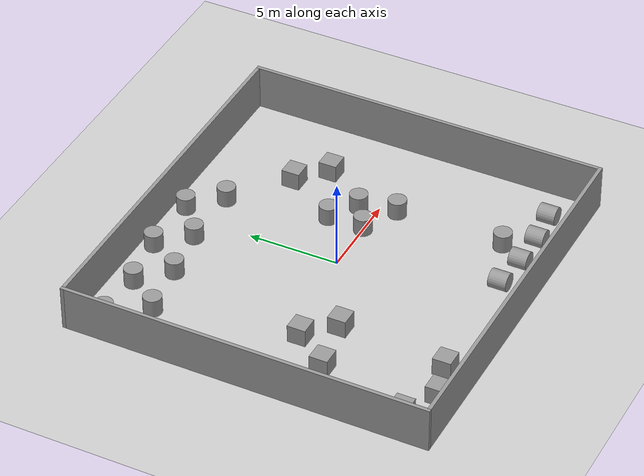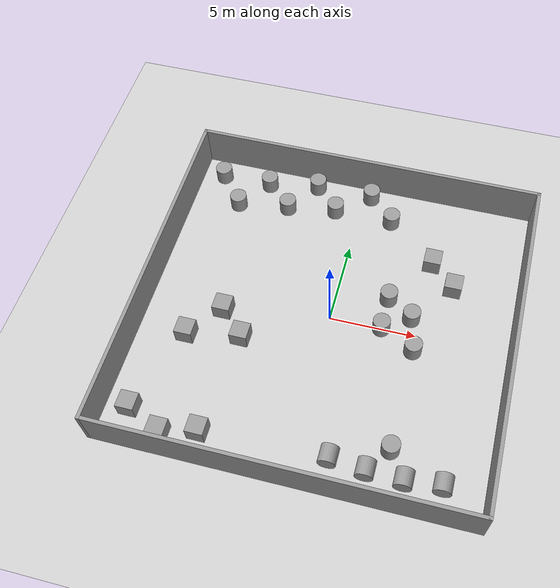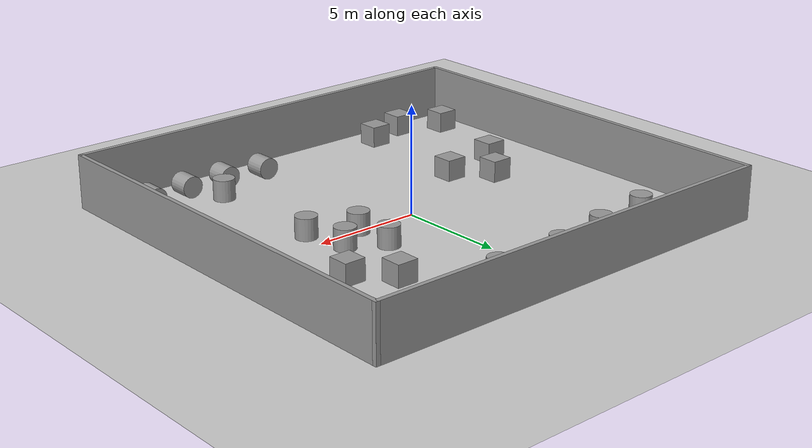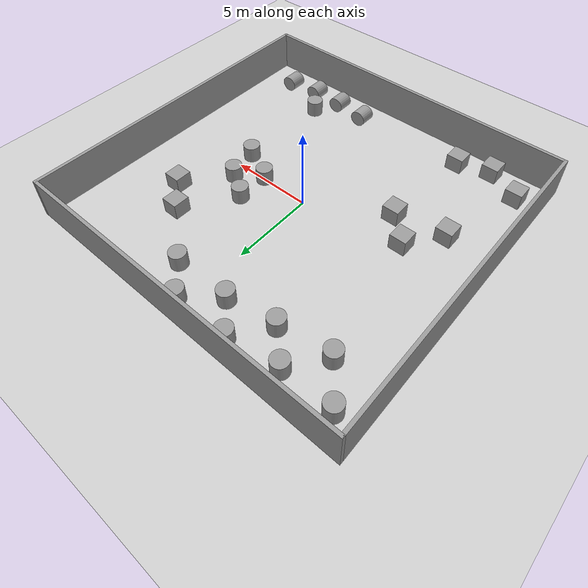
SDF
<sdf version="1.4">
 <world name="default">
  <model name="ground_plane">
   <static>1</static>
   <link name="link">
    <collision name="collision">
     <geometry><plane><normal>0 0 1</normal><size>100 100</size></plane></geometry>
     <surface><friction><ode><mu>100</mu><mu2>50</mu2></ode></friction></surface>
    </collision>
    <visual name="visual">
     <cast_shadows>0</cast_shadows>
     <geometry><plane><normal>0 0 1</normal><size>100 100</size></plane></geometry>
     <material>
      <script><uri>file://media/materials/scripts/gazebo.material</uri><name>Gazebo/Grey</name></script>
     </material>
    </visual>
    <velocity_decay><linear>0</linear><angular>0</angular></velocity_decay>
   </link>
  </model>
  <light name="sun" type="directional">
   <pose>0 0 10 0 -0 0</pose>
   <diffuse>0.8 0.8 0.8 1</diffuse>
   <specular>0.2 0.2 0.2 1</specular>
   <attenuation>
    <range>1000</range>
    <constant>0.9</constant>
    <linear>0.01</linear>
    <quadratic>0.001</quadratic>
   </attenuation>
   <direction>-0.5 0.1 -0.9</direction>
  </light>
  <model name="BuildingDefaultName3">
   <link name="Wall_12">
    <collision name="Wall_12_Collision">
     <geometry><box><size>20.7566 0.2 2.5</size></box></geometry>
     <pose>0 0 1.25 0 -0 0</pose>
    </collision>
    <visual name="Wall_12_Visual">
     <pose>0 0 1.25 0 -0 0</pose>
     <geometry><box><size>20.7566 0.2 2.5</size></box></geometry>
     <material>
      <script><uri>file://media/materials/scripts/gazebo.material</uri><name>Gazebo/Grey</name></script>
     </material>
    </visual>
    <velocity_decay><linear>0</linear><angular>0</angular></velocity_decay>
    <pose>0.012585 -10.0653 0 0 -0 0</pose>
   </link>
   <link name="Wall_13">
    <collision name="Wall_13_Collision">
     <geometry><box><size>20.1448 0.2 2.5</size></box></geometry>
     <pose>0 0 1.25 0 -0 0</pose>
    </collision>
    <visual name="Wall_13_Visual">
     <pose>0 0 1.25 0 -0 0</pose>
     <geometry><box><size>20.1448 0.2 2.5</size></box></geometry>
     <material>
      <script><uri>file://media/materials/scripts/gazebo.material</uri><name>Gazebo/Grey</name></script>
     </material>
    </visual>
    <velocity_decay><linear>0</linear><angular>0</angular></velocity_decay>
    <pose>10.2909 -0.092882 0 0 -0 1.5708</pose>
   </link>
   <link name="Wall_14">
    <collision name="Wall_14_Collision">
     <geometry><box><size>20.9402 0.2 2.5</size></box></geometry>
     <pose>0 0 1.25 0 -0 0</pose>
    </collision>
    <visual name="Wall_14_Visual">
     <pose>0 0 1.25 0 -0 0</pose>
     <geometry><box><size>20.9402 0.2 2.5</size></box></geometry>
     <material>
      <script><uri>file://media/materials/scripts/gazebo.material</uri><name>Gazebo/Grey</name></script>
     </material>
    </visual>
    <velocity_decay><linear>0</linear><angular>0</angular></velocity_decay>
    <pose>-0.079185 9.87953 0 0 -0 3.14159</pose>
   </link>
   <link name="Wall_15">
    <collision name="Wall_15_Collision">
     <geometry><box><size>20.1448 0.2 2.5</size></box></geometry>
     <pose>0 0 1.25 0 -0 0</pose>
    </collision>
    <visual name="Wall_15_Visual">
     <pose>0 0 1.25 0 -0 0</pose>
     <geometry><box><size>20.1448 0.2 2.5</size></box></geometry>
     <material>
      <script><uri>file://media/materials/scripts/gazebo.material</uri><name>Gazebo/Grey</name></script>
     </material>
    </visual>
    <velocity_decay><linear>0</linear><angular>0</angular></velocity_decay>
    <pose>-10.4493 -0.092882 0 0 0 -1.5708</pose>
   </link>
   <static>1</static>
  </model>
  <physics type="ode">
   <max_step_size>0.001</max_step_size>
   <real_time_factor>1</real_time_factor>
   <real_time_update_rate>1000</real_time_update_rate>
   <gravity>0 0 -9.8</gravity>
  </physics>
  <scene><ambient>0.4 0.4 0.4 1</ambient><background>0.7 0.7 0.7 1</background><shadows>1</shadows></scene>
  <spherical_coordinates>
   <surface_model>EARTH_WGS84</surface_model>
   <latitude_deg>0</latitude_deg>
   <longitude_deg>0</longitude_deg>
   <elevation>0</elevation>
   <heading_deg>0</heading_deg>
  </spherical_coordinates>
  <model name="unit_cylinder_1">
   <pose>-9 8.47512 0.499992 0 -0 0</pose>
   <link name="link">
    <inertial>
     <mass>1</mass>
     <inertia><ixx>1</ixx><ixy>0</ixy><ixz>0</ixz><iyy>1</iyy><iyz>0</iyz><izz>1</izz></inertia>
    </inertial>
    <collision name="collision">
     <geometry><cylinder><radius>0.5</radius><length>1</length></cylinder></geometry>
    </collision>
    <visual name="visual">
     <geometry><cylinder><radius>0.5</radius><length>1</length></cylinder></geometry>
     <material>
      <script><uri>file://media/materials/scripts/gazebo.material</uri><name>Gazebo/Grey</name></script>
     </material>
    </visual>
    <velocity_decay><linear>0</linear><angular>0</angular></velocity_decay>
   </link>
   <static>0</static>
  </model>
  <model name="unit_cylinder_2">
   <pose>-6 8.49074 0.499998 -0 -0 -0</pose>
   <link name="link">
    <inertial>
     <mass>1</mass>
     <inertia><ixx>1</ixx><ixy>0</ixy><ixz>0</ixz><iyy>1</iyy><iyz>0</iyz><izz>1</izz></inertia>
    </inertial>
    <collision name="collision">
     <geometry><cylinder><radius>0.5</radius><length>1</length></cylinder></geometry>
    </collision>
    <visual name="visual">
     <geometry><cylinder><radius>0.5</radius><length>1</length></cylinder></geometry>
     <material>
      <script><uri>file://media/materials/scripts/gazebo.material</uri><name>Gazebo/Grey</name></script>
     </material>
    </visual>
    <velocity_decay><linear>0</linear><angular>0</angular></velocity_decay>
   </link>
   <static>0</static>
  </model>
  <model name="unit_cylinder_3">
   <pose>-7.46054 6.56411 0.499992 0 -0 0</pose>
   <link name="link">
    <inertial>
     <mass>1</mass>
     <inertia><ixx>1</ixx><ixy>0</ixy><ixz>0</ixz><iyy>1</iyy><iyz>0</iyz><izz>1</izz></inertia>
    </inertial>
    <collision name="collision">
     <geometry><cylinder><radius>0.5</radius><length>1</length></cylinder></geometry>
    </collision>
    <visual name="visual">
     <geometry><cylinder><radius>0.5</radius><length>1</length></cylinder></geometry>
     <material>
      <script><uri>file://media/materials/scripts/gazebo.material</uri><name>Gazebo/Grey</name></script>
     </material>
    </visual>
    <velocity_decay><linear>0</linear><angular>0</angular></velocity_decay>
   </link>
   <static>0</static>
  </model>
  <model name="unit_cylinder_4">
   <pose>-4.42348 7 0.499992 -1e-06 1e-06 0</pose>
   <link name="link">
    <inertial>
     <mass>1</mass>
     <inertia><ixx>1</ixx><ixy>0</ixy><ixz>0</ixz><iyy>1</iyy><iyz>0</iyz><izz>1</izz></inertia>
    </inertial>
    <collision name="collision">
     <geometry><cylinder><radius>0.5</radius><length>1</length></cylinder></geometry>
    </collision>
    <visual name="visual">
     <geometry><cylinder><radius>0.5</radius><length>1</length></cylinder></geometry>
     <material>
      <script><uri>file://media/materials/scripts/gazebo.material</uri><name>Gazebo/Grey</name></script>
     </material>
    </visual>
    <velocity_decay><linear>0</linear><angular>0</angular></velocity_decay>
   </link>
   <static>0</static>
  </model>
  <model name="unit_cylinder_5">
   <pose>-3 9 0.499998 1e-06 -1e-06 0</pose>
   <link name="link">
    <inertial>
     <mass>1</mass>
     <inertia><ixx>1</ixx><ixy>0</ixy><ixz>0</ixz><iyy>1</iyy><iyz>0</iyz><izz>1</izz></inertia>
    </inertial>
    <collision name="collision">
     <geometry><cylinder><radius>0.5</radius><length>1</length></cylinder></geometry>
    </collision>
    <visual name="visual">
     <geometry><cylinder><radius>0.5</radius><length>1</length></cylinder></geometry>
     <material>
      <script><uri>file://media/materials/scripts/gazebo.material</uri><name>Gazebo/Grey</name></script>
     </material>
    </visual>
    <velocity_decay><linear>0</linear><angular>0</angular></velocity_decay>
   </link>
   <static>0</static>
  </model>
  <model name="unit_cylinder_6">
   <pose>-1.50811 7.45695 0.499992 -1e-06 1e-06 0</pose>
   <link name="link">
    <inertial>
     <mass>1</mass>
     <inertia><ixx>1</ixx><ixy>0</ixy><ixz>0</ixz><iyy>1</iyy><iyz>0</iyz><izz>1</izz></inertia>
    </inertial>
    <collision name="collision">
     <geometry><cylinder><radius>0.5</radius><length>1</length></cylinder></geometry>
    </collision>
    <visual name="visual">
     <geometry><cylinder><radius>0.5</radius><length>1</length></cylinder></geometry>
     <material>
      <script><uri>file://media/materials/scripts/gazebo.material</uri><name>Gazebo/Grey</name></script>
     </material>
    </visual>
    <velocity_decay><linear>0</linear><angular>0</angular></velocity_decay>
   </link>
   <static>0</static>
  </model>
  <model name="unit_cylinder_7">
   <pose>0.422255 9 0.499998 1e-06 -1e-06 0</pose>
   <link name="link">
    <inertial>
     <mass>1</mass>
     <inertia><ixx>1</ixx><ixy>0</ixy><ixz>0</ixz><iyy>1</iyy><iyz>0</iyz><izz>1</izz></inertia>
    </inertial>
    <collision name="collision">
     <geometry><cylinder><radius>0.5</radius><length>1</length></cylinder></geometry>
    </collision>
    <visual name="visual">
     <geometry><cylinder><radius>0.5</radius><length>1</length></cylinder></geometry>
     <material>
      <script><uri>file://media/materials/scripts/gazebo.material</uri><name>Gazebo/Grey</name></script>
     </material>
    </visual>
    <velocity_decay><linear>0</linear><angular>0</angular></velocity_decay>
   </link>
   <static>0</static>
  </model>
  <model name="unit_cylinder_8">
   <pose>2 7.45092 0.499992 -1e-06 1e-06 0</pose>
   <link name="link">
    <inertial>
     <mass>1</mass>
     <inertia><ixx>1</ixx><ixy>0</ixy><ixz>0</ixz><iyy>1</iyy><iyz>0</iyz><izz>1</izz></inertia>
    </inertial>
    <collision name="collision">
     <geometry><cylinder><radius>0.5</radius><length>1</length></cylinder></geometry>
    </collision>
    <visual name="visual">
     <geometry><cylinder><radius>0.5</radius><length>1</length></cylinder></geometry>
     <material>
      <script><uri>file://media/materials/scripts/gazebo.material</uri><name>Gazebo/Grey</name></script>
     </material>
    </visual>
    <velocity_decay><linear>0</linear><angular>0</angular></velocity_decay>
   </link>
   <static>0</static>
  </model>
  <model name="unit_cylinder_9">
   <pose>7.986 -8.26786 0.5 -1.5708 0 0</pose>
   <link name="link">
    <inertial>
     <mass>1</mass>
     <inertia><ixx>1</ixx><ixy>0</ixy><ixz>0</ixz><iyy>1</iyy><iyz>0</iyz><izz>1</izz></inertia>
    </inertial>
    <collision name="collision">
     <geometry><cylinder><radius>0.5</radius><length>1</length></cylinder></geometry>
    </collision>
    <visual name="visual">
     <geometry><cylinder><radius>0.5</radius><length>1</length></cylinder></geometry>
     <material>
      <script><uri>file://media/materials/scripts/gazebo.material</uri><name>Gazebo/Grey</name></script>
     </material>
    </visual>
    <velocity_decay><linear>0</linear><angular>0</angular></velocity_decay>
   </link>
   <static>0</static>
  </model>
  <model name="unit_cylinder_10">
   <pose>5.99948 -8.47849 0.5 -1.5708 -0.000971 0.000224</pose>
   <link name="link">
    <inertial>
     <mass>1</mass>
     <inertia><ixx>1</ixx><ixy>0</ixy><ixz>0</ixz><iyy>1</iyy><iyz>0</iyz><izz>1</izz></inertia>
    </inertial>
    <collision name="collision">
     <geometry><cylinder><radius>0.5</radius><length>1</length></cylinder></geometry>
    </collision>
    <visual name="visual">
     <geometry><cylinder><radius>0.5</radius><length>1</length></cylinder></geometry>
     <material>
      <script><uri>file://media/materials/scripts/gazebo.material</uri><name>Gazebo/Grey</name></script>
     </material>
    </visual>
    <velocity_decay><linear>0</linear><angular>0</angular></velocity_decay>
   </link>
   <static>0</static>
  </model>
  <model name="unit_cylinder_11">
   <pose>4 -8.43207 0.5 -1.5708 0 0</pose>
   <link name="link">
    <inertial>
     <mass>1</mass>
     <inertia><ixx>1</ixx><ixy>0</ixy><ixz>0</ixz><iyy>1</iyy><iyz>0</iyz><izz>1</izz></inertia>
    </inertial>
    <collision name="collision">
     <geometry><cylinder><radius>0.5</radius><length>1</length></cylinder></geometry>
    </collision>
    <visual name="visual">
     <geometry><cylinder><radius>0.5</radius><length>1</length></cylinder></geometry>
     <material>
      <script><uri>file://media/materials/scripts/gazebo.material</uri><name>Gazebo/Grey</name></script>
     </material>
    </visual>
    <velocity_decay><linear>0</linear><angular>0</angular></velocity_decay>
   </link>
   <static>0</static>
  </model>
  <model name="unit_cylinder_12">
   <pose>2 -8.21356 0.5 -1.5708 0 0</pose>
   <link name="link">
    <inertial>
     <mass>1</mass>
     <inertia><ixx>1</ixx><ixy>0</ixy><ixz>0</ixz><iyy>1</iyy><iyz>0</iyz><izz>1</izz></inertia>
    </inertial>
    <collision name="collision">
     <geometry><cylinder><radius>0.5</radius><length>1</length></cylinder></geometry>
    </collision>
    <visual name="visual">
     <geometry><cylinder><radius>0.5</radius><length>1</length></cylinder></geometry>
     <material>
      <script><uri>file://media/materials/scripts/gazebo.material</uri><name>Gazebo/Grey</name></script>
     </material>
    </visual>
    <velocity_decay><linear>0</linear><angular>0</angular></velocity_decay>
   </link>
   <static>0</static>
  </model>
  <model name="unit_cylinder_13">
   <pose>5 -7 0.499992 -1e-06 1e-06 0</pose>
   <link name="link">
    <inertial>
     <mass>1</mass>
     <inertia><ixx>1</ixx><ixy>0</ixy><ixz>0</ixz><iyy>1</iyy><iyz>0</iyz><izz>1</izz></inertia>
    </inertial>
    <collision name="collision">
     <geometry><cylinder><radius>0.5</radius><length>1</length></cylinder></geometry>
    </collision>
    <visual name="visual">
     <geometry><cylinder><radius>0.5</radius><length>1</length></cylinder></geometry>
     <material>
      <script><uri>file://media/materials/scripts/gazebo.material</uri><name>Gazebo/Grey</name></script>
     </material>
    </visual>
    <velocity_decay><linear>0</linear><angular>0</angular></velocity_decay>
   </link>
   <static>0</static>
  </model>
  <model name="unit_box_1">
   <pose>-7 -9 0.5 0 -0 0</pose>
   <link name="link">
    <inertial>
     <mass>1</mass>
     <inertia><ixx>1</ixx><ixy>0</ixy><ixz>0</ixz><iyy>1</iyy><iyz>0</iyz><izz>1</izz></inertia>
    </inertial>
    <collision name="collision"><geometry><box><size>1 1 1</size></box></geometry></collision>
    <visual name="visual">
     <geometry><box><size>1 1 1</size></box></geometry>
     <material>
      <script><uri>file://media/materials/scripts/gazebo.material</uri><name>Gazebo/Grey</name></script>
     </material>
    </visual>
    <velocity_decay><linear>0</linear><angular>0</angular></velocity_decay>
   </link>
   <static>0</static>
  </model>
  <model name="unit_box_2">
   <pose>-9 -8 0.5 0 -0 0</pose>
   <link name="link">
    <inertial>
     <mass>1</mass>
     <inertia><ixx>1</ixx><ixy>0</ixy><ixz>0</ixz><iyy>1</iyy><iyz>0</iyz><izz>1</izz></inertia>
    </inertial>
    <collision name="collision"><geometry><box><size>1 1 1</size></box></geometry></collision>
    <visual name="visual">
     <geometry><box><size>1 1 1</size></box></geometry>
     <material>
      <script><uri>file://media/materials/scripts/gazebo.material</uri><name>Gazebo/Grey</name></script>
     </material>
    </visual>
    <velocity_decay><linear>0</linear><angular>0</angular></velocity_decay>
   </link>
   <static>0</static>
  </model>
  <model name="unit_box_3">
   <pose>-5 -8.44101 0.5 0 -0 0</pose>
   <link name="link">
    <inertial>
     <mass>1</mass>
     <inertia><ixx>1</ixx><ixy>0</ixy><ixz>0</ixz><iyy>1</iyy><iyz>0</iyz><izz>1</izz></inertia>
    </inertial>
    <collision name="collision"><geometry><box><size>1 1 1</size></box></geometry></collision>
    <visual name="visual">
     <geometry><box><size>1 1 1</size></box></geometry>
     <material>
      <script><uri>file://media/materials/scripts/gazebo.material</uri><name>Gazebo/Grey</name></script>
     </material>
    </visual>
    <velocity_decay><linear>0</linear><angular>0</angular></velocity_decay>
   </link>
   <static>0</static>
  </model>
  <model name="unit_cylinder_1_0">
   <pose>3 -0 0.499998 1e-06 -0 0</pose>
   <link name="link">
    <inertial>
     <mass>1</mass>
     <inertia><ixx>1</ixx><ixy>0</ixy><ixz>0</ixz><iyy>1</iyy><iyz>0</iyz><izz>1</izz></inertia>
    </inertial>
    <collision name="collision">
     <geometry><cylinder><radius>0.5</radius><length>1</length></cylinder></geometry>
    </collision>
    <visual name="visual">
     <geometry><cylinder><radius>0.5</radius><length>1</length></cylinder></geometry>
     <material>
      <script><uri>file://media/materials/scripts/gazebo.material</uri><name>Gazebo/Grey</name></script>
     </material>
    </visual>
    <velocity_decay><linear>0</linear><angular>0</angular></velocity_decay>
   </link>
   <static>0</static>
  </model>
  <model name="unit_cylinder_2_0">
   <pose>3 2 0.499992 -1e-06 -0 0</pose>
   <link name="link">
    <inertial>
     <mass>1</mass>
     <inertia><ixx>1</ixx><ixy>0</ixy><ixz>0</ixz><iyy>1</iyy><iyz>0</iyz><izz>1</izz></inertia>
    </inertial>
    <collision name="collision">
     <geometry><cylinder><radius>0.5</radius><length>1</length></cylinder></geometry>
    </collision>
    <visual name="visual">
     <geometry><cylinder><radius>0.5</radius><length>1</length></cylinder></geometry>
     <material>
      <script><uri>file://media/materials/scripts/gazebo.material</uri><name>Gazebo/Grey</name></script>
     </material>
    </visual>
    <velocity_decay><linear>0</linear><angular>0</angular></velocity_decay>
   </link>
   <static>0</static>
  </model>
  <model name="unit_cylinder_3_0">
   <pose>4.52222 1 0.499998 1e-06 -0 0</pose>
   <link name="link">
    <inertial>
     <mass>1</mass>
     <inertia><ixx>1</ixx><ixy>0</ixy><ixz>0</ixz><iyy>1</iyy><iyz>0</iyz><izz>1</izz></inertia>
    </inertial>
    <collision name="collision">
     <geometry><cylinder><radius>0.5</radius><length>1</length></cylinder></geometry>
    </collision>
    <visual name="visual">
     <geometry><cylinder><radius>0.5</radius><length>1</length></cylinder></geometry>
     <material>
      <script><uri>file://media/materials/scripts/gazebo.material</uri><name>Gazebo/Grey</name></script>
     </material>
    </visual>
    <velocity_decay><linear>0</linear><angular>0</angular></velocity_decay>
   </link>
   <static>0</static>
  </model>
  <model name="unit_cylinder_4_0">
   <pose>5 -1 0.499992 -1e-06 -0 0</pose>
   <link name="link">
    <inertial>
     <mass>1</mass>
     <inertia><ixx>1</ixx><ixy>0</ixy><ixz>0</ixz><iyy>1</iyy><iyz>0</iyz><izz>1</izz></inertia>
    </inertial>
    <collision name="collision">
     <geometry><cylinder><radius>0.5</radius><length>1</length></cylinder></geometry>
    </collision>
    <visual name="visual">
     <geometry><cylinder><radius>0.5</radius><length>1</length></cylinder></geometry>
     <material>
      <script><uri>file://media/materials/scripts/gazebo.material</uri><name>Gazebo/Grey</name></script>
     </material>
    </visual>
    <velocity_decay><linear>0</linear><angular>0</angular></velocity_decay>
   </link>
   <static>0</static>
  </model>
  <model name="unit_box_1_0">
   <pose>-4.51677 -2.47809 0.5 0 -0 0</pose>
   <link name="link">
    <inertial>
     <mass>1</mass>
     <inertia><ixx>1</ixx><ixy>0</ixy><ixz>0</ixz><iyy>1</iyy><iyz>0</iyz><izz>1</izz></inertia>
    </inertial>
    <collision name="collision"><geometry><box><size>1 1 1</size></box></geometry></collision>
    <visual name="visual">
     <geometry><box><size>1 1 1</size></box></geometry>
     <material>
      <script><uri>file://media/materials/scripts/gazebo.material</uri><name>Gazebo/Grey</name></script>
     </material>
    </visual>
    <velocity_decay><linear>0</linear><angular>0</angular></velocity_decay>
   </link>
   <static>0</static>
  </model>
  <model name="unit_box_2_0">
   <pose>-6 -1 0.5 0 -0 0</pose>
   <link name="link">
    <inertial>
     <mass>1</mass>
     <inertia><ixx>1</ixx><ixy>0</ixy><ixz>0</ixz><iyy>1</iyy><iyz>0</iyz><izz>1</izz></inertia>
    </inertial>
    <collision name="collision"><geometry><box><size>1 1 1</size></box></geometry></collision>
    <visual name="visual">
     <geometry><box><size>1 1 1</size></box></geometry>
     <material>
      <script><uri>file://media/materials/scripts/gazebo.material</uri><name>Gazebo/Grey</name></script>
     </material>
    </visual>
    <velocity_decay><linear>0</linear><angular>0</angular></velocity_decay>
   </link>
   <static>0</static>
  </model>
  <model name="unit_box_3_0">
   <pose>-7.54795 -3 0.5 0 -0 0</pose>
   <link name="link">
    <inertial>
     <mass>1</mass>
     <inertia><ixx>1</ixx><ixy>0</ixy><ixz>0</ixz><iyy>1</iyy><iyz>0</iyz><izz>1</izz></inertia>
    </inertial>
    <collision name="collision"><geometry><box><size>1 1 1</size></box></geometry></collision>
    <visual name="visual">
     <geometry><box><size>1 1 1</size></box></geometry>
     <material>
      <script><uri>file://media/materials/scripts/gazebo.material</uri><name>Gazebo/Grey</name></script>
     </material>
    </visual>
    <velocity_decay><linear>0</linear><angular>0</angular></velocity_decay>
   </link>
   <static>0</static>
  </model>
  <model name="unit_box_4">
   <pose>5 5 0.5 0 -0 0</pose>
   <link name="link">
    <inertial>
     <mass>1</mass>
     <inertia><ixx>1</ixx><ixy>0</ixy><ixz>0</ixz><iyy>1</iyy><iyz>0</iyz><izz>1</izz></inertia>
    </inertial>
    <collision name="collision"><geometry><box><size>1 1 1</size></box></geometry></collision>
    <visual name="visual">
     <geometry><box><size>1 1 1</size></box></geometry>
     <material>
      <script><uri>file://media/materials/scripts/gazebo.material</uri><name>Gazebo/Grey</name></script>
     </material>
    </visual>
    <velocity_decay><linear>0</linear><angular>0</angular></velocity_decay>
   </link>
   <static>0</static>
  </model>
  <model name="unit_box_5">
   <pose>6.47957 3.57314 0.5 0 -0 0</pose>
   <link name="link">
    <inertial>
     <mass>1</mass>
     <inertia><ixx>1</ixx><ixy>0</ixy><ixz>0</ixz><iyy>1</iyy><iyz>0</iyz><izz>1</izz></inertia>
    </inertial>
    <collision name="collision"><geometry><box><size>1 1 1</size></box></geometry></collision>
    <visual name="visual">
     <geometry><box><size>1 1 1</size></box></geometry>
     <material>
      <script><uri>file://media/materials/scripts/gazebo.material</uri><name>Gazebo/Grey</name></script>
     </material>
    </visual>
    <velocity_decay><linear>0</linear><angular>0</angular></velocity_decay>
   </link>
   <static>0</static>
  </model>
 </world>
</sdf>
